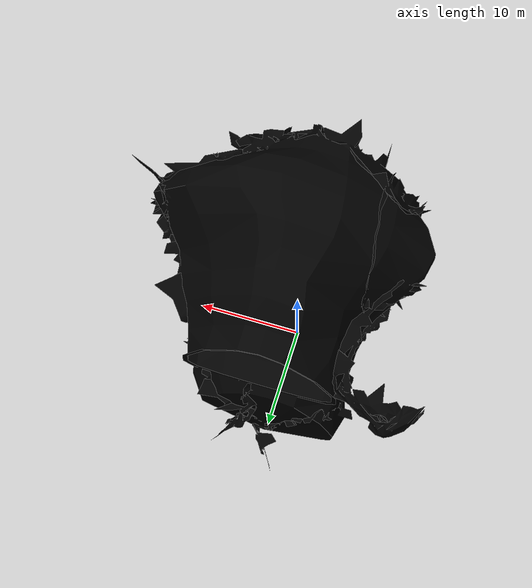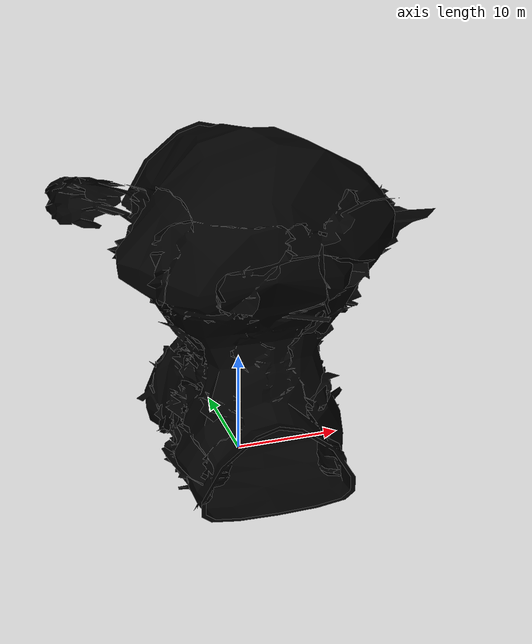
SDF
<sdf version="1.6">
  <model name="Cave Vertical Shaft Lights Type B">
    <static>true</static>
    <include>
      <name>cave_vertical_shaft</name>
      <uri>https://fuel.ignitionrobotics.org/1.0/OpenRobotics/models/Cave Vertical Shaft Type B</uri>
    </include>

    <link name="lights">
      <light name="spot_light1" type="spot">
        <pose>0 0 10 0 0 0</pose>
        <diffuse>0 0 0 1</diffuse>
        <specular>0 0 0 1</specular>
        <attenuation>
          <range>20</range>
          <linear>0.2</linear>
          <constant>1.0</constant>
          <quadratic>0.01</quadratic>
        </attenuation>
        <spot>
          <inner_angle>2.0</inner_angle>
          <outer_angle>3.1</outer_angle>
          <falloff>1.2</falloff>
        </spot>
        <cast_shadows>false</cast_shadows>
      </light>

      <light name="spot_light2" type="spot">
        <pose>0 0 32 0 0 0</pose>
        <diffuse>0 0 0 1</diffuse>
        <specular>0 0 0 1</specular>
        <attenuation>
          <range>20</range>
          <linear>0.2</linear>
          <constant>1.0</constant>
          <quadratic>0.01</quadratic>
        </attenuation>
        <spot>
          <inner_angle>2.0</inner_angle>
          <outer_angle>3.1</outer_angle>
          <falloff>1.2</falloff>
        </spot>
        <cast_shadows>false</cast_shadows>
      </light>
    </link>
  </model>
</sdf>

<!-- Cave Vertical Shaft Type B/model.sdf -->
<sdf version="1.6">
  <model name="Cave Vertical Shaft Type B">
    <static>true</static>
    <link name="base_link">
      <collision name="collision">
        <pose>0 0 0 0 0 0</pose>
        <geometry>
          <mesh>
            <uri>model://Cave Vertical Shaft Type B/meshes/caveverticalshaft.dae</uri>
            <scale>1.0 1.0 1.0</scale>
          </mesh>
        </geometry>
      </collision>
      <visual name="StriatedRock_visual">
        <geometry>
          <mesh>
            <uri>model://Cave Vertical Shaft Type B/meshes/caveverticalshaft.dae</uri>
            <submesh>
              <name>StriatedRock</name>
              <center>false</center>
            </submesh>
          </mesh>
        </geometry>
        <material>
          <diffuse>0 0 0 1</diffuse>
          <specular>0 0 0 1</specular>
          <pbr>
            <metal>
              <albedo_map>model://Cave Vertical Shaft Type B/materials/textures/StriatedRock_Albedo.png</albedo_map>
              <normal_map>model://Cave Vertical Shaft Type B/materials/textures/StriatedRock_Normal.png</normal_map>
              <roughness_map>model://Cave Vertical Shaft Type B/materials/textures/StriatedRock_Roughness.png</roughness_map>
            </metal>
          </pbr>

          <script>
            <uri>model://Cave Vertical Shaft Type B/materials/scripts/</uri>
            <uri>model://Cave Vertical Shaft Type B/materials/textures/</uri>
            <name>CaveTile/StriatedRock_Diffuse</name>
          </script>
        </material>
      </visual>
      <visual name="RockPile_visual">
        <geometry>
          <mesh>
            <uri>model://Cave Vertical Shaft Type B/meshes/caveverticalshaft.dae</uri>
            <submesh>
              <name>RockPile</name>
              <center>false</center>
            </submesh>
          </mesh>
        </geometry>
        <material>
          <diffuse>0 0 0 1</diffuse>
          <specular>0 0 0 1</specular>
          <pbr>
            <metal>
              <albedo_map>model://Cave Vertical Shaft Type B/materials/textures/RockPile_Albedo.png</albedo_map>
              <normal_map>model://Cave Vertical Shaft Type B/materials/textures/RockPile_Normal.png</normal_map>
              <roughness_map>model://Cave Vertical Shaft Type B/materials/textures/RockPile_Roughness.png</roughness_map>
            </metal>
          </pbr>

          <script>
            <uri>model://Cave Vertical Shaft Type B/materials/scripts/</uri>
            <uri>model://Cave Vertical Shaft Type B/materials/textures/</uri>
            <name>CaveTile/RockPile_Diffuse</name>
          </script>
        </material>
      </visual>
      <visual name="CaveWall_visual">
        <geometry>
          <mesh>
            <uri>model://Cave Vertical Shaft Type B/meshes/caveverticalshaft.dae</uri>
            <submesh>
              <name>CaveWall</name>
              <center>false</center>
            </submesh>
          </mesh>
        </geometry>
        <material>
          <diffuse>0 0 0 1</diffuse>
          <specular>0 0 0 1</specular>
          <pbr>
            <metal>
              <albedo_map>model://Cave Vertical Shaft Type B/materials/textures/CaveWall_Albedo.png</albedo_map>
              <normal_map>model://Cave Vertical Shaft Type B/materials/textures/CaveWall_Normal.png</normal_map>
              <roughness_map>model://Cave Vertical Shaft Type B/materials/textures/CaveWall_Roughness.png</roughness_map>
            </metal>
          </pbr>

          <script>
            <uri>model://Cave Vertical Shaft Type B/materials/scripts/</uri>
            <uri>model://Cave Vertical Shaft Type B/materials/textures/</uri>
            <name>CaveTile/CaveWall_Diffuse</name>
          </script>
        </material>
      </visual>
    </link>

    <plugin filename="libignition-gazebo-performer-detector-system.so" name="ignition::gazebo::systems::PerformerDetector">
      <header_data>
        <key>type</key>
        <value>vertical</value>
      </header_data>
      <topic>/subt_performer_detector</topic>
      <pose>0.2 -0.2 16 0 0 0</pose>
      <geometry>
        <box>
          <size>11.5 11.5 37</size>
        </box>
      </geometry>
    </plugin>
  </model>
</sdf>
